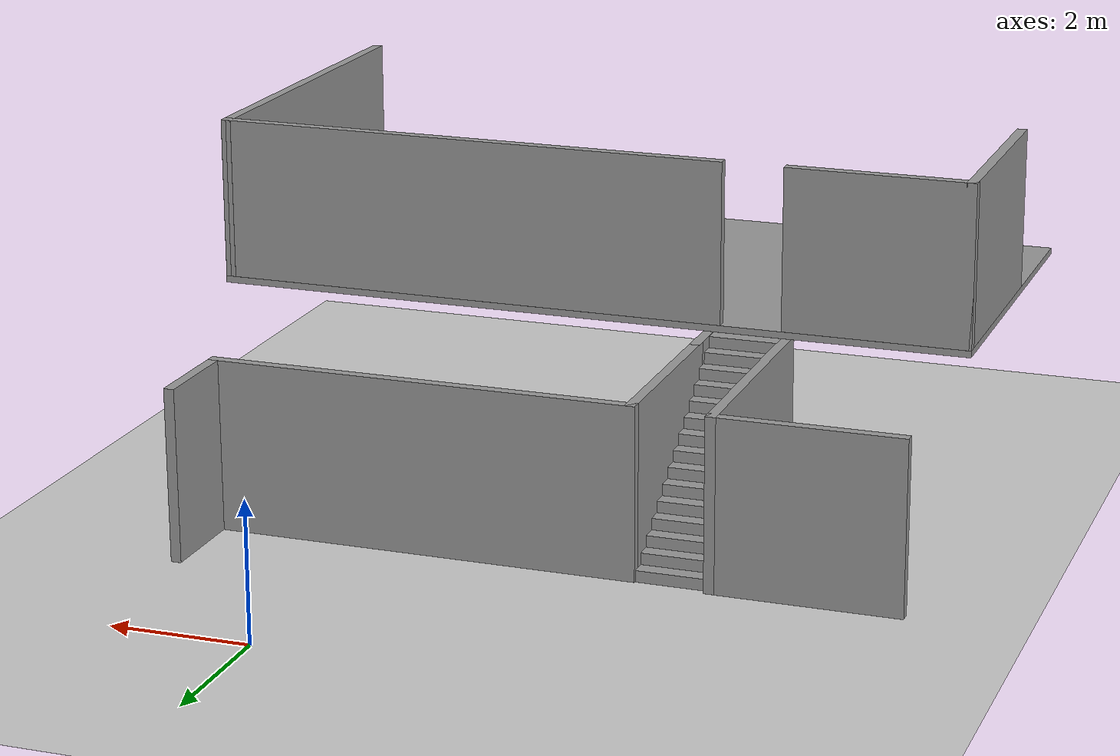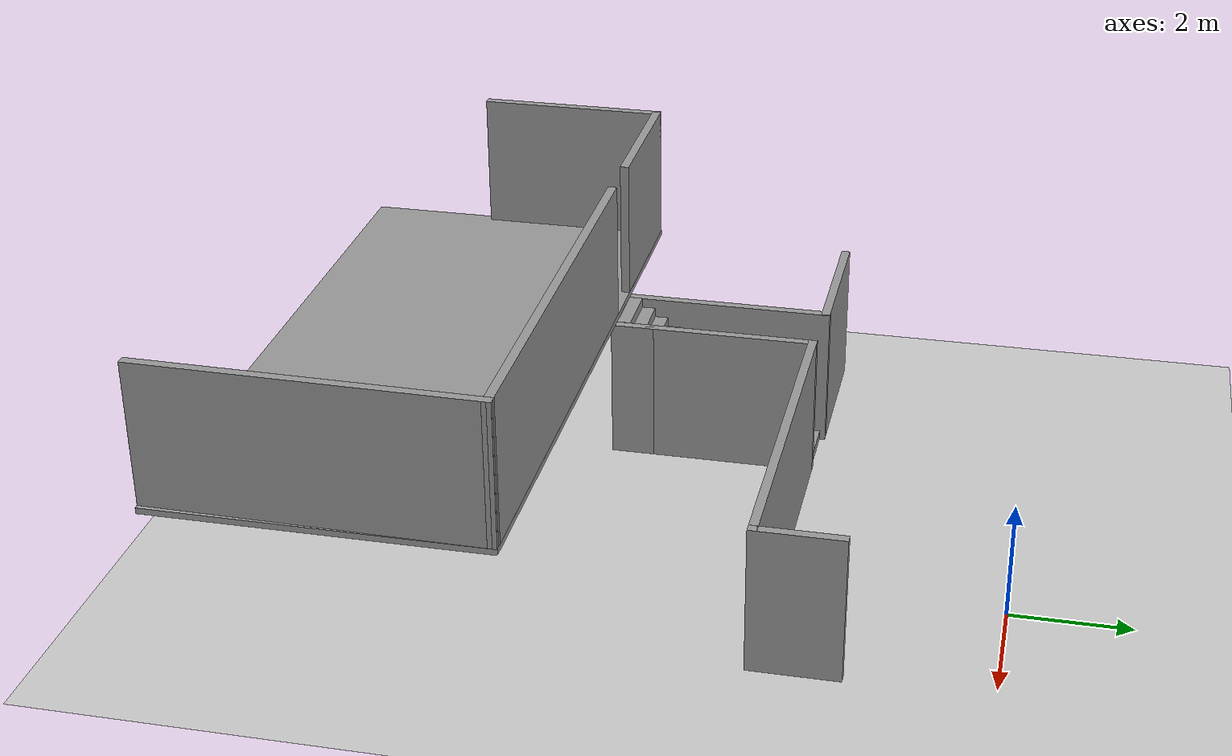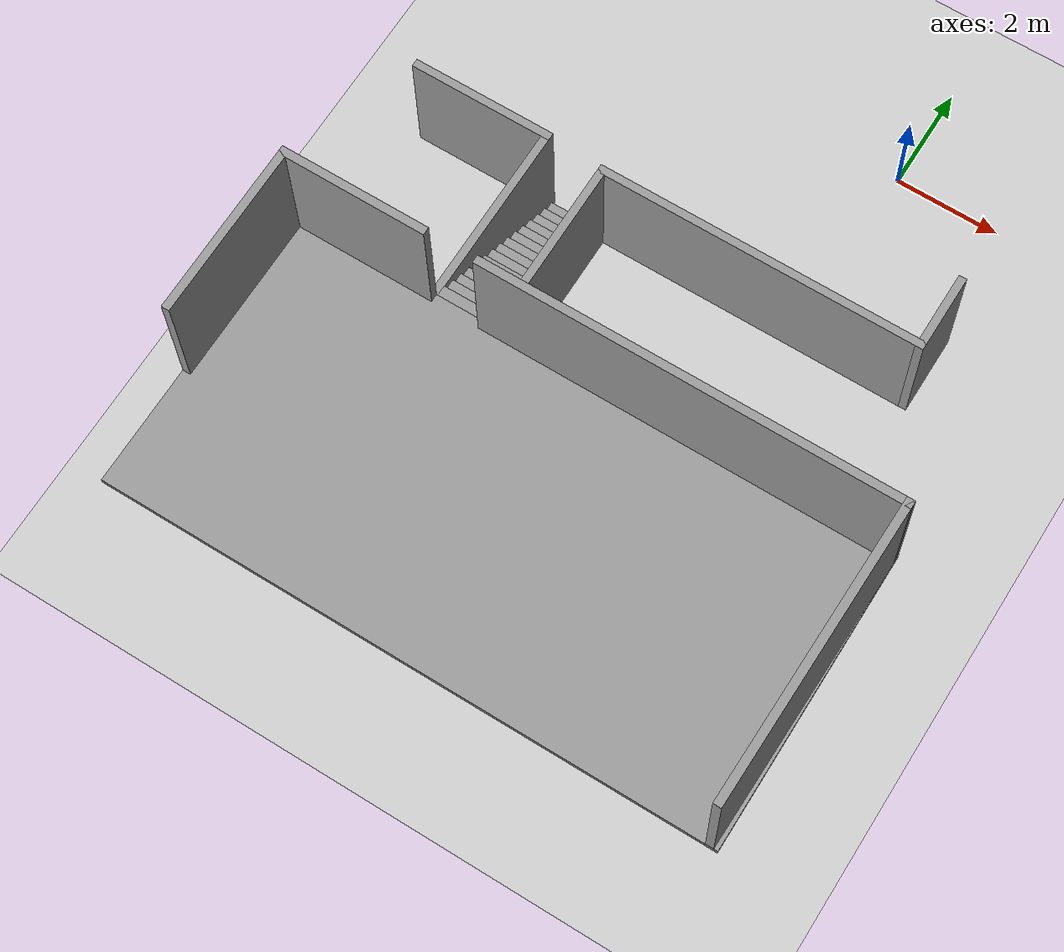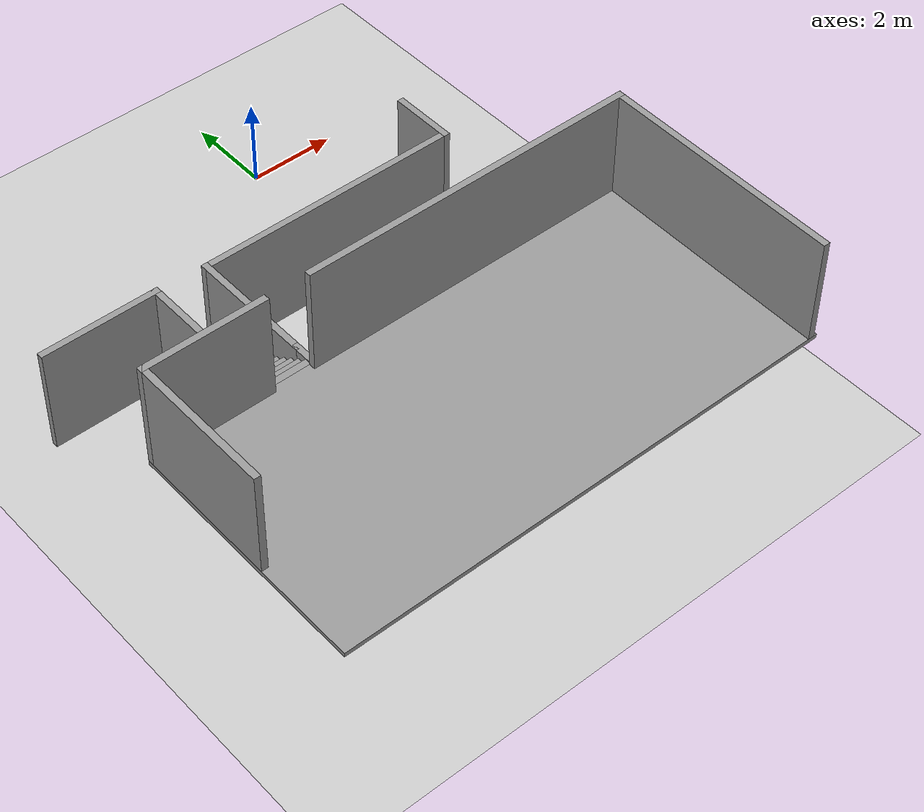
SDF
<?xml version="1.0" ?>
<sdf version="1.4">
  <!-- We use a custom world for the rrbot so that the camera angle is launched correctly -->

  <world name="default">

    <include>
      <uri>model://ground_plane</uri>
    </include>

    <!-- Global light source -->
    <include>
      <uri>model://sun</uri>
    </include>

    <!-- Focus camera on tall pendulum -->
    <gui fullscreen='0'>
      <camera name='user_camera'>
        <pose>4.927360 -4.376610 3.740080 0.000000 0.275643 2.356190</pose>
        <view_controller>orbit</view_controller>
      </camera>
    </gui>

    <model name='my_world'>
    <pose>-2.00802 -6.36676 0 0 -0 0</pose>
    <link name='Floor_0'>
      <pose>0 -3.59056 2.5 0 -0 0</pose>
      <visual name='Floor_0_Visual_0'>
        <pose>0 0 0.05 0 -0 0</pose>
        <geometry>
          <box>
            <size>11.403 5.5524 0.1</size>
          </box>
        </geometry>
        <material>
          <script>
            <uri>file://media/materials/scripts/gazebo.material</uri>
            <name>Gazebo/Grey</name>
          </script>
          <ambient>1 1 1 1</ambient>
        </material>
        <meta>
          <layer>1</layer>
        </meta>
      </visual>
      <collision name='Floor_0_Collision_0'>
        <geometry>
          <box>
            <size>11.403 5.5524 0.1</size>
          </box>
        </geometry>
        <pose>0 0 0.05 0 -0 0</pose>
      </collision>
    </link>
    <link name='Stairs_2'>
      <visual name='Stairs_2_Visual_0'>
        <pose>-2.46298 2.57159 0.083333 0 -0 0</pose>
        <geometry>
          <box>
            <size>1 0.233333 0.166667</size>
          </box>
        </geometry>
        <material>
          <script>
            <uri>file://media/materials/scripts/gazebo.material</uri>
            <name>Gazebo/Grey</name>
          </script>
          <ambient>1 1 1 1</ambient>
        </material>
        <meta>
          <layer>0</layer>
        </meta>
      </visual>
      <collision name='Stairs_2_Collision_0'>
        <geometry>
          <box>
            <size>1 0.233333 0.166667</size>
          </box>
        </geometry>
        <pose>-2.46298 2.57159 0.083333 0 -0 0</pose>
      </collision>
      <visual name='Stairs_2_Visual_1'>
        <pose>-2.46298 2.33826 0.25 0 -0 0</pose>
        <geometry>
          <box>
            <size>1 0.233333 0.166667</size>
          </box>
        </geometry>
        <material>
          <script>
            <uri>file://media/materials/scripts/gazebo.material</uri>
            <name>Gazebo/Grey</name>
          </script>
          <ambient>1 1 1 1</ambient>
        </material>
        <meta>
          <layer>0</layer>
        </meta>
      </visual>
      <collision name='Stairs_2_Collision_1'>
        <geometry>
          <box>
            <size>1 0.233333 0.166667</size>
          </box>
        </geometry>
        <pose>-2.46298 2.33826 0.25 0 -0 0</pose>
      </collision>
      <visual name='Stairs_2_Visual_2'>
        <pose>-2.46298 2.10493 0.416667 0 -0 0</pose>
        <geometry>
          <box>
            <size>1 0.233333 0.166667</size>
          </box>
        </geometry>
        <material>
          <script>
            <uri>file://media/materials/scripts/gazebo.material</uri>
            <name>Gazebo/Grey</name>
          </script>
          <ambient>1 1 1 1</ambient>
        </material>
        <meta>
          <layer>0</layer>
        </meta>
      </visual>
      <collision name='Stairs_2_Collision_2'>
        <geometry>
          <box>
            <size>1 0.233333 0.166667</size>
          </box>
        </geometry>
        <pose>-2.46298 2.10493 0.416667 0 -0 0</pose>
      </collision>
      <visual name='Stairs_2_Visual_3'>
        <pose>-2.46298 1.87159 0.583333 0 -0 0</pose>
        <geometry>
          <box>
            <size>1 0.233333 0.166667</size>
          </box>
        </geometry>
        <material>
          <script>
            <uri>file://media/materials/scripts/gazebo.material</uri>
            <name>Gazebo/Grey</name>
          </script>
          <ambient>1 1 1 1</ambient>
        </material>
        <meta>
          <layer>0</layer>
        </meta>
      </visual>
      <collision name='Stairs_2_Collision_3'>
        <geometry>
          <box>
            <size>1 0.233333 0.166667</size>
          </box>
        </geometry>
        <pose>-2.46298 1.87159 0.583333 0 -0 0</pose>
      </collision>
      <visual name='Stairs_2_Visual_4'>
        <pose>-2.46298 1.63826 0.75 0 -0 0</pose>
        <geometry>
          <box>
            <size>1 0.233333 0.166667</size>
          </box>
        </geometry>
        <material>
          <script>
            <uri>file://media/materials/scripts/gazebo.material</uri>
            <name>Gazebo/Grey</name>
          </script>
          <ambient>1 1 1 1</ambient>
        </material>
        <meta>
          <layer>0</layer>
        </meta>
      </visual>
      <collision name='Stairs_2_Collision_4'>
        <geometry>
          <box>
            <size>1 0.233333 0.166667</size>
          </box>
        </geometry>
        <pose>-2.46298 1.63826 0.75 0 -0 0</pose>
      </collision>
      <visual name='Stairs_2_Visual_5'>
        <pose>-2.46298 1.40493 0.916667 0 -0 0</pose>
        <geometry>
          <box>
            <size>1 0.233333 0.166667</size>
          </box>
        </geometry>
        <material>
          <script>
            <uri>file://media/materials/scripts/gazebo.material</uri>
            <name>Gazebo/Grey</name>
          </script>
          <ambient>1 1 1 1</ambient>
        </material>
        <meta>
          <layer>0</layer>
        </meta>
      </visual>
      <collision name='Stairs_2_Collision_5'>
        <geometry>
          <box>
            <size>1 0.233333 0.166667</size>
          </box>
        </geometry>
        <pose>-2.46298 1.40493 0.916667 0 -0 0</pose>
      </collision>
      <visual name='Stairs_2_Visual_6'>
        <pose>-2.46298 1.17159 1.08333 0 -0 0</pose>
        <geometry>
          <box>
            <size>1 0.233333 0.166667</size>
          </box>
        </geometry>
        <material>
          <script>
            <uri>file://media/materials/scripts/gazebo.material</uri>
            <name>Gazebo/Grey</name>
          </script>
          <ambient>1 1 1 1</ambient>
        </material>
        <meta>
          <layer>0</layer>
        </meta>
      </visual>
      <collision name='Stairs_2_Collision_6'>
        <geometry>
          <box>
            <size>1 0.233333 0.166667</size>
          </box>
        </geometry>
        <pose>-2.46298 1.17159 1.08333 0 -0 0</pose>
      </collision>
      <visual name='Stairs_2_Visual_7'>
        <pose>-2.46298 0.93826 1.25 0 -0 0</pose>
        <geometry>
          <box>
            <size>1 0.233333 0.166667</size>
          </box>
        </geometry>
        <material>
          <script>
            <uri>file://media/materials/scripts/gazebo.material</uri>
            <name>Gazebo/Grey</name>
          </script>
          <ambient>1 1 1 1</ambient>
        </material>
        <meta>
          <layer>0</layer>
        </meta>
      </visual>
      <collision name='Stairs_2_Collision_7'>
        <geometry>
          <box>
            <size>1 0.233333 0.166667</size>
          </box>
        </geometry>
        <pose>-2.46298 0.93826 1.25 0 -0 0</pose>
      </collision>
      <visual name='Stairs_2_Visual_8'>
        <pose>-2.46298 0.704926 1.41667 0 -0 0</pose>
        <geometry>
          <box>
            <size>1 0.233333 0.166667</size>
          </box>
        </geometry>
        <material>
          <script>
            <uri>file://media/materials/scripts/gazebo.material</uri>
            <name>Gazebo/Grey</name>
          </script>
          <ambient>1 1 1 1</ambient>
        </material>
        <meta>
          <layer>0</layer>
        </meta>
      </visual>
      <collision name='Stairs_2_Collision_8'>
        <geometry>
          <box>
            <size>1 0.233333 0.166667</size>
          </box>
        </geometry>
        <pose>-2.46298 0.704926 1.41667 0 -0 0</pose>
      </collision>
      <visual name='Stairs_2_Visual_9'>
        <pose>-2.46298 0.471593 1.58333 0 -0 0</pose>
        <geometry>
          <box>
            <size>1 0.233333 0.166667</size>
          </box>
        </geometry>
        <material>
          <script>
            <uri>file://media/materials/scripts/gazebo.material</uri>
            <name>Gazebo/Grey</name>
          </script>
          <ambient>1 1 1 1</ambient>
        </material>
        <meta>
          <layer>0</layer>
        </meta>
      </visual>
      <collision name='Stairs_2_Collision_9'>
        <geometry>
          <box>
            <size>1 0.233333 0.166667</size>
          </box>
        </geometry>
        <pose>-2.46298 0.471593 1.58333 0 -0 0</pose>
      </collision>
      <visual name='Stairs_2_Visual_10'>
        <pose>-2.46298 0.23826 1.75 0 -0 0</pose>
        <geometry>
          <box>
            <size>1 0.233333 0.166667</size>
          </box>
        </geometry>
        <material>
          <script>
            <uri>file://media/materials/scripts/gazebo.material</uri>
            <name>Gazebo/Grey</name>
          </script>
          <ambient>1 1 1 1</ambient>
        </material>
        <meta>
          <layer>0</layer>
        </meta>
      </visual>
      <collision name='Stairs_2_Collision_10'>
        <geometry>
          <box>
            <size>1 0.233333 0.166667</size>
          </box>
        </geometry>
        <pose>-2.46298 0.23826 1.75 0 -0 0</pose>
      </collision>
      <visual name='Stairs_2_Visual_11'>
        <pose>-2.46298 0.004926 1.91667 0 -0 0</pose>
        <geometry>
          <box>
            <size>1 0.233333 0.166667</size>
          </box>
        </geometry>
        <material>
          <script>
            <uri>file://media/materials/scripts/gazebo.material</uri>
            <name>Gazebo/Grey</name>
          </script>
          <ambient>1 1 1 1</ambient>
        </material>
        <meta>
          <layer>0</layer>
        </meta>
      </visual>
      <collision name='Stairs_2_Collision_11'>
        <geometry>
          <box>
            <size>1 0.233333 0.166667</size>
          </box>
        </geometry>
        <pose>-2.46298 0.004926 1.91667 0 -0 0</pose>
      </collision>
      <visual name='Stairs_2_Visual_12'>
        <pose>-2.46298 -0.228407 2.08333 0 -0 0</pose>
        <geometry>
          <box>
            <size>1 0.233333 0.166667</size>
          </box>
        </geometry>
        <material>
          <script>
            <uri>file://media/materials/scripts/gazebo.material</uri>
            <name>Gazebo/Grey</name>
          </script>
          <ambient>1 1 1 1</ambient>
        </material>
        <meta>
          <layer>0</layer>
        </meta>
      </visual>
      <collision name='Stairs_2_Collision_12'>
        <geometry>
          <box>
            <size>1 0.233333 0.166667</size>
          </box>
        </geometry>
        <pose>-2.46298 -0.228407 2.08333 0 -0 0</pose>
      </collision>
      <visual name='Stairs_2_Visual_13'>
        <pose>-2.46298 -0.46174 2.25 0 -0 0</pose>
        <geometry>
          <box>
            <size>1 0.233333 0.166667</size>
          </box>
        </geometry>
        <material>
          <script>
            <uri>file://media/materials/scripts/gazebo.material</uri>
            <name>Gazebo/Grey</name>
          </script>
          <ambient>1 1 1 1</ambient>
        </material>
        <meta>
          <layer>0</layer>
        </meta>
      </visual>
      <collision name='Stairs_2_Collision_13'>
        <geometry>
          <box>
            <size>1 0.233333 0.166667</size>
          </box>
        </geometry>
        <pose>-2.46298 -0.46174 2.25 0 -0 0</pose>
      </collision>
      <visual name='Stairs_2_Visual_14'>
        <pose>-2.46298 -0.695074 2.41667 0 -0 0</pose>
        <geometry>
          <box>
            <size>1 0.233333 0.166667</size>
          </box>
        </geometry>
        <material>
          <script>
            <uri>file://media/materials/scripts/gazebo.material</uri>
            <name>Gazebo/Grey</name>
          </script>
          <ambient>1 1 1 1</ambient>
        </material>
        <meta>
          <layer>0</layer>
        </meta>
      </visual>
      <collision name='Stairs_2_Collision_14'>
        <geometry>
          <box>
            <size>1 0.233333 0.166667</size>
          </box>
        </geometry>
        <pose>-2.46298 -0.695074 2.41667 0 -0 0</pose>
      </collision>
    </link>
    <link name='Wall_0'>
      <collision name='Wall_0_Collision'>
        <geometry>
          <box>
            <size>6.25 0.15 2.5</size>
          </box>
        </geometry>
        <pose>0 0 1.25 0 -0 0</pose>
      </collision>
      <visual name='Wall_0_Visual'>
        <pose>0 0 1.25 0 -0 0</pose>
        <geometry>
          <box>
            <size>6.25 0.15 2.5</size>
          </box>
        </geometry>
        <material>
          <script>
            <uri>file://media/materials/scripts/gazebo.material</uri>
            <name>Gazebo/Grey</name>
          </script>
          <ambient>1 1 1 1</ambient>
        </material>
        <meta>
          <layer>0</layer>
        </meta>
      </visual>
      <pose>1.16802 2.63676 0 0 -0 0</pose>
    </link>
    <link name='Wall_1'>
      <collision name='Wall_1_Collision'>
        <geometry>
          <box>
            <size>1.5 0.15 2.5</size>
          </box>
        </geometry>
        <pose>0 0 1.25 0 -0 0</pose>
      </collision>
      <visual name='Wall_1_Visual'>
        <pose>0 0 1.25 0 -0 0</pose>
        <geometry>
          <box>
            <size>1.5 0.15 2.5</size>
          </box>
        </geometry>
        <material>
          <script>
            <uri>file://media/materials/scripts/gazebo.material</uri>
            <name>Gazebo/Grey</name>
          </script>
          <ambient>1 1 1 1</ambient>
        </material>
        <meta>
          <layer>0</layer>
        </meta>
      </visual>
      <pose>4.21802 3.31176 0 0 -0 1.5708</pose>
    </link>
    <link name='Wall_10'>
      <collision name='Wall_10_Collision'>
        <geometry>
          <box>
            <size>2.75 0.15 2.5</size>
          </box>
        </geometry>
        <pose>0 0 1.25 0 -0 0</pose>
      </collision>
      <visual name='Wall_10_Visual'>
        <pose>0 0 1.25 0 -0 0</pose>
        <geometry>
          <box>
            <size>2.75 0.15 2.5</size>
          </box>
        </geometry>
        <material>
          <script>
            <uri>file://media/materials/scripts/gazebo.material</uri>
            <name>Gazebo/Grey</name>
          </script>
          <ambient>1 1 1 1</ambient>
        </material>
        <meta>
          <layer>0</layer>
        </meta>
      </visual>
      <pose>-4.32648 2.70926 0 0 -0 3.14159</pose>
    </link>
    <link name='Wall_12'>
      <collision name='Wall_12_Collision'>
        <geometry>
          <box>
            <size>5.5509 0.15 2.5</size>
          </box>
        </geometry>
        <pose>0 0 1.25 0 -0 0</pose>
      </collision>
      <visual name='Wall_12_Visual'>
        <pose>0 0 1.25 0 -0 0</pose>
        <geometry>
          <box>
            <size>5.5509 0.15 2.5</size>
          </box>
        </geometry>
        <material>
          <script>
            <uri>file://media/materials/scripts/gazebo.material</uri>
            <name>Gazebo/Grey</name>
          </script>
          <ambient>1 1 1 1</ambient>
        </material>
        <meta>
          <layer>1</layer>
        </meta>
      </visual>
      <pose>5.58984 -3.59056 2.5 0 -0 -1.584</pose>
    </link>
    <link name='Wall_14'>
      <collision name='Wall_14_Collision'>
        <geometry>
          <box>
            <size>7.75 0.15 2.5</size>
          </box>
        </geometry>
        <pose>0 0 1.25 0 -0 0</pose>
      </collision>
      <visual name='Wall_14_Visual'>
        <pose>0 0 1.25 0 -0 0</pose>
        <geometry>
          <box>
            <size>7.75 0.15 2.5</size>
          </box>
        </geometry>
        <material>
          <script>
            <uri>file://media/materials/scripts/gazebo.material</uri>
            <name>Gazebo/Grey</name>
          </script>
          <ambient>1 1 1 1</ambient>
        </material>
        <meta>
          <layer>1</layer>
        </meta>
      </visual>
      <pose>1.8255 -0.890347 2.5 0 -0 3.14159</pose>
    </link>
    <link name='Wall_16'>
      <collision name='Wall_16_Collision'>
        <geometry>
          <box>
            <size>2.75 0.15 2.5</size>
          </box>
        </geometry>
        <pose>0 0 1.25 0 -0 0</pose>
      </collision>
      <visual name='Wall_16_Visual'>
        <pose>0 0 1.25 0 -0 0</pose>
        <geometry>
          <box>
            <size>2.75 0.15 2.5</size>
          </box>
        </geometry>
        <material>
          <script>
            <uri>file://media/materials/scripts/gazebo.material</uri>
            <name>Gazebo/Grey</name>
          </script>
          <ambient>1 1 1 1</ambient>
        </material>
        <meta>
          <layer>1</layer>
        </meta>
      </visual>
      <pose>-4.32648 -0.89074 2.5 0 -0 0</pose>
    </link>
    <link name='Wall_17'>
      <collision name='Wall_17_Collision'>
        <geometry>
          <box>
            <size>3.30116 0.15 2.5</size>
          </box>
        </geometry>
        <pose>0 0 1.25 0 -0 0</pose>
      </collision>
      <visual name='Wall_17_Visual'>
        <pose>0 0 1.25 0 -0 0</pose>
        <geometry>
          <box>
            <size>3.30116 0.15 2.5</size>
          </box>
        </geometry>
        <material>
          <script>
            <uri>file://media/materials/scripts/gazebo.material</uri>
            <name>Gazebo/Grey</name>
          </script>
          <ambient>1 1 1 1</ambient>
        </material>
        <meta>
          <layer>1</layer>
        </meta>
      </visual>
      <pose>-5.62648 -2.46632 2.5 0 -0 -1.5708</pose>
    </link>
    <link name='Wall_3'>
      <collision name='Wall_3_Collision'>
        <geometry>
          <box>
            <size>3 0.15 2.5</size>
          </box>
        </geometry>
        <pose>0 0 1.25 0 -0 0</pose>
      </collision>
      <visual name='Wall_3_Visual'>
        <pose>0 0 1.25 0 -0 0</pose>
        <geometry>
          <box>
            <size>3 0.15 2.5</size>
          </box>
        </geometry>
        <material>
          <script>
            <uri>file://media/materials/scripts/gazebo.material</uri>
            <name>Gazebo/Grey</name>
          </script>
          <ambient>1 1 1 1</ambient>
        </material>
        <meta>
          <layer>0</layer>
        </meta>
      </visual>
      <pose>-1.88198 1.21176 0 0 -0 -1.5708</pose>
    </link>
    <link name='Wall_5'>
      <collision name='Wall_5_Collision'>
        <geometry>
          <box>
            <size>0.75 0.15 2.5</size>
          </box>
        </geometry>
        <pose>0 0 1.25 0 -0 0</pose>
      </collision>
      <visual name='Wall_5_Visual'>
        <pose>0 0 1.25 0 -0 0</pose>
        <geometry>
          <box>
            <size>0.75 0.15 2.5</size>
          </box>
        </geometry>
        <material>
          <script>
            <uri>file://media/materials/scripts/gazebo.material</uri>
            <name>Gazebo/Grey</name>
          </script>
          <ambient>1 1 1 1</ambient>
        </material>
        <meta>
          <layer>0</layer>
        </meta>
      </visual>
      <pose>-1.88198 -0.51324 0 0 -0 -1.5708</pose>
    </link>
    <link name='Wall_8'>
      <collision name='Wall_8_Collision'>
        <geometry>
          <box>
            <size>3.75 0.15 2.5</size>
          </box>
        </geometry>
        <pose>0 0 1.25 0 -0 0</pose>
      </collision>
      <visual name='Wall_8_Visual'>
        <pose>0 0 1.25 0 -0 0</pose>
        <geometry>
          <box>
            <size>3.75 0.15 2.5</size>
          </box>
        </geometry>
        <material>
          <script>
            <uri>file://media/materials/scripts/gazebo.material</uri>
            <name>Gazebo/Grey</name>
          </script>
          <ambient>1 1 1 1</ambient>
        </material>
        <meta>
          <layer>0</layer>
        </meta>
      </visual>
      <pose>-3.02648 0.90926 0 0 -0 -1.5708</pose>
    </link>
    <static>1</static>
    </model>
  </world>
</sdf>
